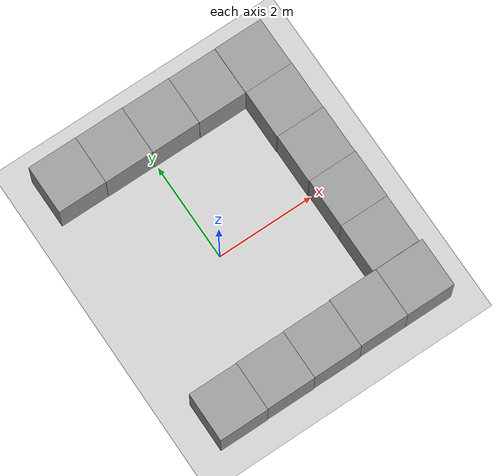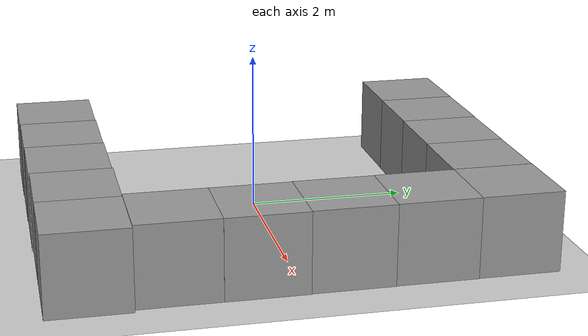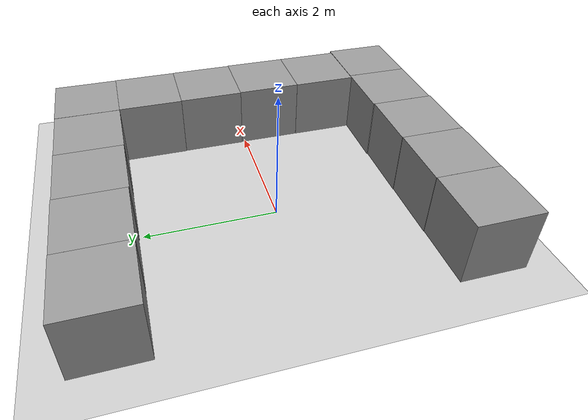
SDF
<sdf version="1.6">
 <world name="default">
  <light name="sun" type="directional">
   <pose>0 0 10 0 -0 0</pose>
   <diffuse>0.8 0.8 0.8 1</diffuse>
   <specular>0.2 0.2 0.2 1</specular>
   <attenuation>
    <range>1000</range>
    <constant>0.9</constant>
    <linear>0.01</linear>
    <quadratic>0.001</quadratic>
   </attenuation>
   <direction>-0.5 0.1 -0.9</direction>
  </light>
  <model name="ground_plane">
   <static>1</static>
   <link name="link">
    <collision name="collision">
     <geometry><plane><normal>0 0 1</normal><size>100 100</size></plane></geometry>
     <surface><friction><ode><mu>100</mu><mu2>50</mu2></ode></friction></surface>
    </collision>
    <visual name="visual">
     <cast_shadows>0</cast_shadows>
     <geometry><plane><normal>0 0 1</normal><size>100 100</size></plane></geometry>
     <material>
      <script><uri>file://media/materials/scripts/gazebo.material</uri><name>Gazebo/Grey</name></script>
     </material>
    </visual>
   </link>
  </model>
  <gravity>0 0 -9.8</gravity>
  <magnetic_field>6e-06 2.3e-05 -4.2e-05</magnetic_field>
  <atmosphere type="adiabatic"/>
  <physics name="default_physics" default="0" type="ode">
   <max_step_size>0.001</max_step_size>
   <real_time_factor>1</real_time_factor>
   <real_time_update_rate>1000</real_time_update_rate>
  </physics>
  <scene><ambient>0.4 0.4 0.4 1</ambient><background>0.7 0.7 0.7 1</background><shadows>1</shadows></scene>
  <spherical_coordinates>
   <surface_model>EARTH_WGS84</surface_model>
   <latitude_deg>0</latitude_deg>
   <longitude_deg>0</longitude_deg>
   <elevation>0</elevation>
   <heading_deg>0</heading_deg>
  </spherical_coordinates>
  <model name="unit_box">
   <pose>-1.54812 2.5715 0.499995 -0 -1e-05 7.1e-05</pose>
   <link name="link">
    <inertial>
     <mass>1</mass>
     <inertia>
      <ixx>0.166667</ixx>
      <ixy>0</ixy>
      <ixz>0</ixz>
      <iyy>0.166667</iyy>
      <iyz>0</iyz>
      <izz>0.166667</izz>
     </inertia>
    </inertial>
    <collision name="collision"><geometry><box><size>1 1 1</size></box></geometry></collision>
    <visual name="visual">
     <geometry><box><size>1 1 1</size></box></geometry>
     <material>
      <script><name>Gazebo/Grey</name><uri>file://media/materials/scripts/gazebo.material</uri></script>
     </material>
    </visual>
   </link>
  </model>
  <model name="unit_box_0">
   <pose>-0.548061 2.56757 0.499995 0 1e-05 0.000167</pose>
   <link name="link">
    <inertial>
     <mass>1</mass>
     <inertia>
      <ixx>0.166667</ixx>
      <ixy>0</ixy>
      <ixz>0</ixz>
      <iyy>0.166667</iyy>
      <iyz>0</iyz>
      <izz>0.166667</izz>
     </inertia>
    </inertial>
    <collision name="collision"><geometry><box><size>1 1 1</size></box></geometry></collision>
    <visual name="visual">
     <geometry><box><size>1 1 1</size></box></geometry>
     <material>
      <script><name>Gazebo/Grey</name><uri>file://media/materials/scripts/gazebo.material</uri></script>
     </material>
    </visual>
   </link>
  </model>
  <model name="unit_box_1">
   <pose>0.451976 2.55952 0.499995 1e-05 -0 0.000219</pose>
   <link name="link">
    <inertial>
     <mass>1</mass>
     <inertia>
      <ixx>0.166667</ixx>
      <ixy>0</ixy>
      <ixz>0</ixz>
      <iyy>0.166667</iyy>
      <iyz>0</iyz>
      <izz>0.166667</izz>
     </inertia>
    </inertial>
    <collision name="collision"><geometry><box><size>1 1 1</size></box></geometry></collision>
    <visual name="visual">
     <geometry><box><size>1 1 1</size></box></geometry>
     <material>
      <script><name>Gazebo/Grey</name><uri>file://media/materials/scripts/gazebo.material</uri></script>
     </material>
    </visual>
   </link>
  </model>
  <model name="unit_box_2">
   <pose>1.45199 2.55524 0.499995 1e-05 -0 0.000229</pose>
   <link name="link">
    <inertial>
     <mass>1</mass>
     <inertia>
      <ixx>0.166667</ixx>
      <ixy>0</ixy>
      <ixz>0</ixz>
      <iyy>0.166667</iyy>
      <iyz>0</iyz>
      <izz>0.166667</izz>
     </inertia>
    </inertial>
    <collision name="collision"><geometry><box><size>1 1 1</size></box></geometry></collision>
    <visual name="visual">
     <geometry><box><size>1 1 1</size></box></geometry>
     <material>
      <script><name>Gazebo/Grey</name><uri>file://media/materials/scripts/gazebo.material</uri></script>
     </material>
    </visual>
   </link>
  </model>
  <model name="unit_box_3">
   <pose>2.45354 2.55835 0.5 0 0 -0.000937</pose>
   <link name="link">
    <inertial>
     <mass>1</mass>
     <inertia>
      <ixx>0.166667</ixx>
      <ixy>0</ixy>
      <ixz>0</ixz>
      <iyy>0.166667</iyy>
      <iyz>0</iyz>
      <izz>0.166667</izz>
     </inertia>
    </inertial>
    <collision name="collision"><geometry><box><size>1 1 1</size></box></geometry></collision>
    <visual name="visual">
     <geometry><box><size>1 1 1</size></box></geometry>
     <material>
      <script><name>Gazebo/Grey</name><uri>file://media/materials/scripts/gazebo.material</uri></script>
     </material>
    </visual>
   </link>
  </model>
  <model name="unit_box_4">
   <pose>2.45985 1.55832 0.5 0 0 -0.000949</pose>
   <link name="link">
    <inertial>
     <mass>1</mass>
     <inertia>
      <ixx>0.166667</ixx>
      <ixy>0</ixy>
      <ixz>0</ixz>
      <iyy>0.166667</iyy>
      <iyz>0</iyz>
      <izz>0.166667</izz>
     </inertia>
    </inertial>
    <collision name="collision"><geometry><box><size>1 1 1</size></box></geometry></collision>
    <visual name="visual">
     <geometry><box><size>1 1 1</size></box></geometry>
     <material>
      <script><name>Gazebo/Grey</name><uri>file://media/materials/scripts/gazebo.material</uri></script>
     </material>
    </visual>
   </link>
  </model>
  <model name="unit_box_5">
   <pose>2.46639 0.558244 0.499995 0 -1e-05 -0.000817</pose>
   <link name="link">
    <inertial>
     <mass>1</mass>
     <inertia>
      <ixx>0.166667</ixx>
      <ixy>0</ixy>
      <ixz>0</ixz>
      <iyy>0.166667</iyy>
      <iyz>0</iyz>
      <izz>0.166667</izz>
     </inertia>
    </inertial>
    <collision name="collision"><geometry><box><size>1 1 1</size></box></geometry></collision>
    <visual name="visual">
     <geometry><box><size>1 1 1</size></box></geometry>
     <material>
      <script><name>Gazebo/Grey</name><uri>file://media/materials/scripts/gazebo.material</uri></script>
     </material>
    </visual>
   </link>
  </model>
  <model name="unit_box_6">
   <pose>2.4763 -0.441765 0.499995 0 -1e-05 -0.000817</pose>
   <link name="link">
    <inertial>
     <mass>1</mass>
     <inertia>
      <ixx>0.166667</ixx>
      <ixy>0</ixy>
      <ixz>0</ixz>
      <iyy>0.166667</iyy>
      <iyz>0</iyz>
      <izz>0.166667</izz>
     </inertia>
    </inertial>
    <collision name="collision"><geometry><box><size>1 1 1</size></box></geometry></collision>
    <visual name="visual">
     <geometry><box><size>1 1 1</size></box></geometry>
     <material>
      <script><name>Gazebo/Grey</name><uri>file://media/materials/scripts/gazebo.material</uri></script>
     </material>
    </visual>
   </link>
  </model>
  <model name="unit_box_7">
   <pose>2.47342 -1.44179 0.499995 0 1e-05 -0.000858</pose>
   <link name="link">
    <inertial>
     <mass>1</mass>
     <inertia>
      <ixx>0.166667</ixx>
      <ixy>0</ixy>
      <ixz>0</ixz>
      <iyy>0.166667</iyy>
      <iyz>0</iyz>
      <izz>0.166667</izz>
     </inertia>
    </inertial>
    <collision name="collision"><geometry><box><size>1 1 1</size></box></geometry></collision>
    <visual name="visual">
     <geometry><box><size>1 1 1</size></box></geometry>
     <material>
      <script><name>Gazebo/Grey</name><uri>file://media/materials/scripts/gazebo.material</uri></script>
     </material>
    </visual>
   </link>
  </model>
  <model name="unit_box_8">
   <pose>2.53787 -2.44522 0.5 0 0 -0.003188</pose>
   <link name="link">
    <inertial>
     <mass>1</mass>
     <inertia>
      <ixx>0.166667</ixx>
      <ixy>0</ixy>
      <ixz>0</ixz>
      <iyy>0.166667</iyy>
      <iyz>0</iyz>
      <izz>0.166667</izz>
     </inertia>
    </inertial>
    <collision name="collision"><geometry><box><size>1 1 1</size></box></geometry></collision>
    <visual name="visual">
     <geometry><box><size>1 1 1</size></box></geometry>
     <material>
      <script><name>Gazebo/Grey</name><uri>file://media/materials/scripts/gazebo.material</uri></script>
     </material>
    </visual>
   </link>
  </model>
  <model name="unit_box_9">
   <pose>1.53782 -2.44351 0.5 0 0 -0.003109</pose>
   <link name="link">
    <inertial>
     <mass>1</mass>
     <inertia>
      <ixx>0.166667</ixx>
      <ixy>0</ixy>
      <ixz>0</ixz>
      <iyy>0.166667</iyy>
      <iyz>0</iyz>
      <izz>0.166667</izz>
     </inertia>
    </inertial>
    <collision name="collision"><geometry><box><size>1 1 1</size></box></geometry></collision>
    <visual name="visual">
     <geometry><box><size>1 1 1</size></box></geometry>
     <material>
      <script><name>Gazebo/Grey</name><uri>file://media/materials/scripts/gazebo.material</uri></script>
     </material>
    </visual>
   </link>
  </model>
  <model name="unit_box_10">
   <pose>0.537613 -2.45483 0.5 0 0 -0.002773</pose>
   <link name="link">
    <inertial>
     <mass>1</mass>
     <inertia>
      <ixx>0.166667</ixx>
      <ixy>0</ixy>
      <ixz>0</ixz>
      <iyy>0.166667</iyy>
      <iyz>0</iyz>
      <izz>0.166667</izz>
     </inertia>
    </inertial>
    <collision name="collision"><geometry><box><size>1 1 1</size></box></geometry></collision>
    <visual name="visual">
     <geometry><box><size>1 1 1</size></box></geometry>
     <material>
      <script><name>Gazebo/Grey</name><uri>file://media/materials/scripts/gazebo.material</uri></script>
     </material>
    </visual>
   </link>
  </model>
  <model name="unit_box_11">
   <pose>-0.462537 -2.45868 0.499995 0 1e-05 -0.002749</pose>
   <link name="link">
    <inertial>
     <mass>1</mass>
     <inertia>
      <ixx>0.166667</ixx>
      <ixy>0</ixy>
      <ixz>0</ixz>
      <iyy>0.166667</iyy>
      <iyz>0</iyz>
      <izz>0.166667</izz>
     </inertia>
    </inertial>
    <collision name="collision"><geometry><box><size>1 1 1</size></box></geometry></collision>
    <visual name="visual">
     <geometry><box><size>1 1 1</size></box></geometry>
     <material>
      <script><name>Gazebo/Grey</name><uri>file://media/materials/scripts/gazebo.material</uri></script>
     </material>
    </visual>
   </link>
  </model>
  <model name="unit_box_12">
   <pose>-1.46257 -2.46372 0.499789 -1e-05 -0 -0.002757</pose>
   <link name="link">
    <inertial>
     <mass>1</mass>
     <inertia>
      <ixx>0.166667</ixx>
      <ixy>0</ixy>
      <ixz>0</ixz>
      <iyy>0.166667</iyy>
      <iyz>0</iyz>
      <izz>0.166667</izz>
     </inertia>
    </inertial>
    <collision name="collision"><geometry><box><size>1 1 1</size></box></geometry></collision>
    <visual name="visual">
     <geometry><box><size>1 1 1</size></box></geometry>
     <material>
      <script><name>Gazebo/Grey</name><uri>file://media/materials/scripts/gazebo.material</uri></script>
     </material>
    </visual>
   </link>
  </model>
  <plugin name="ros_interface_plugin" filename="librotors_gazebo_ros_interface_plugin.so"/>
  <spherical_coordinates>
   <surface_model>EARTH_WGS84</surface_model>
   <latitude_deg>47.3667</latitude_deg>
   <longitude_deg>8.5500</longitude_deg>
   <elevation>500.0</elevation>
   <heading_deg>0</heading_deg>
  </spherical_coordinates>
  <physics type="ode">
   <ode>
    <solver><type>quick</type><iters>1000</iters><sor>1.3</sor></solver>
    <constraints>
     <cfm>0</cfm>
     <erp>0.2</erp>
     <contact_max_correcting_vel>100</contact_max_correcting_vel>
     <contact_surface_layer>0.001</contact_surface_layer>
    </constraints>
   </ode>
   <max_step_size>0.01</max_step_size>
   <real_time_factor>1</real_time_factor>
   <real_time_update_rate>100</real_time_update_rate>
   <gravity>0 0 -9.8</gravity>
  </physics>
 </world>
</sdf>
